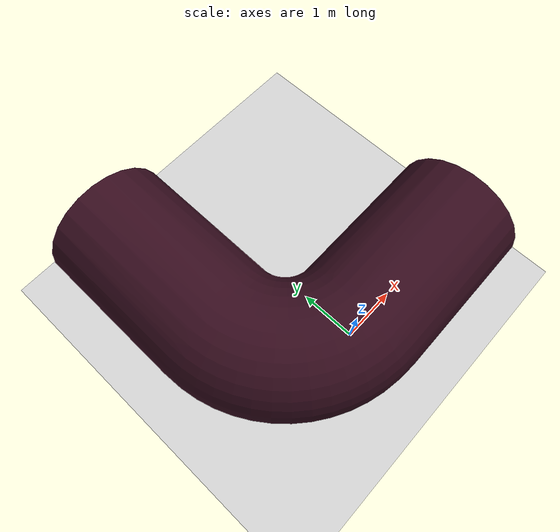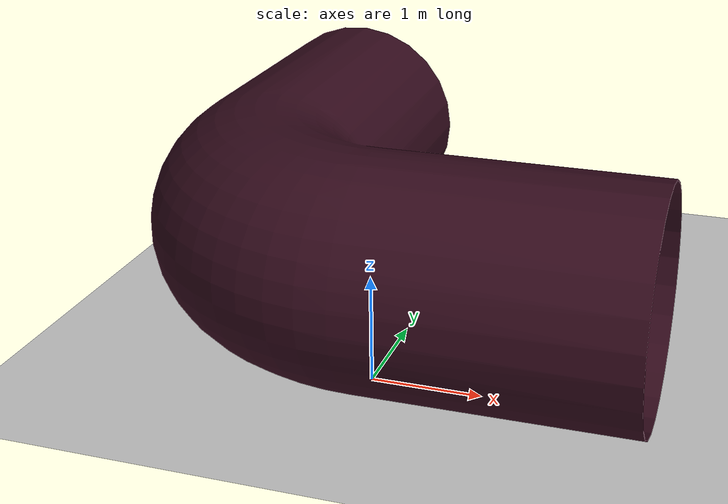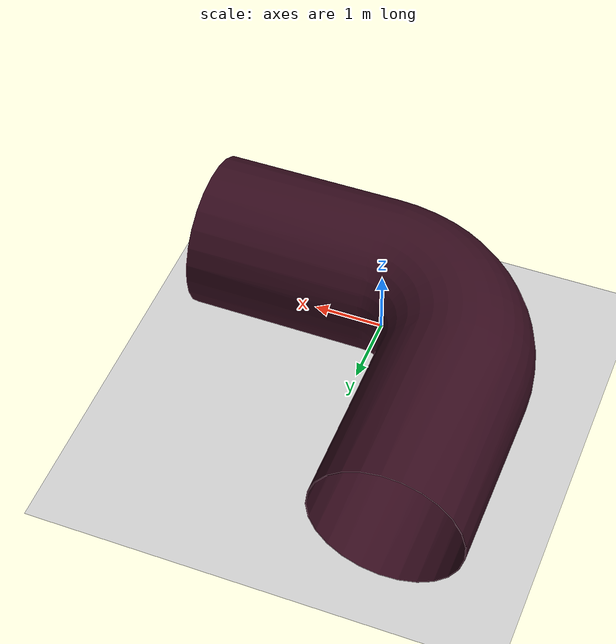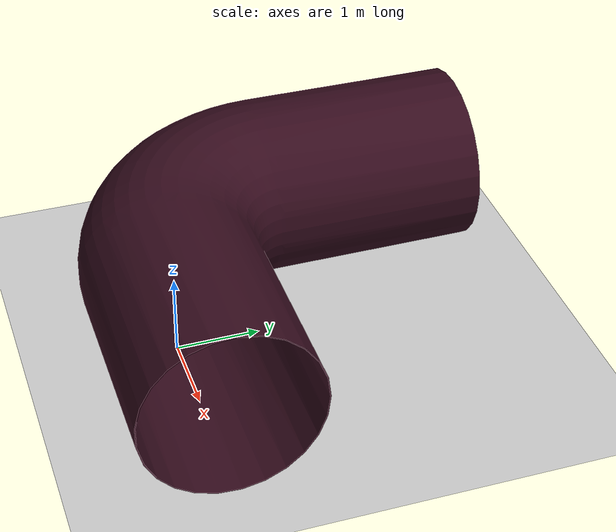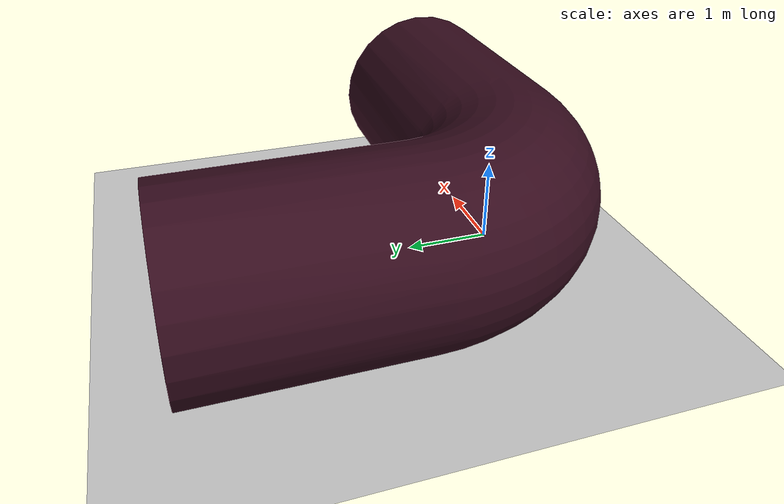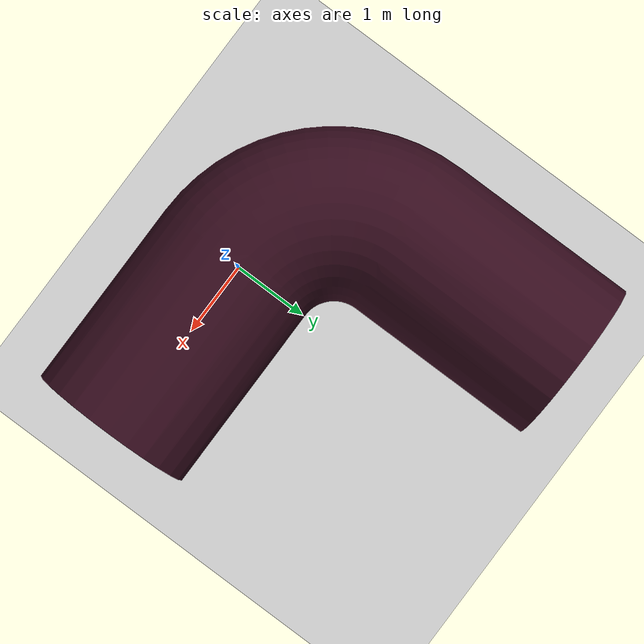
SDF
<sdf version="1.6">
 <world name="default">
  <light name="sun" type="directional">
   <pose>0 0 10 0 -0 0</pose>
   <diffuse>0.8 0.8 0.8 1</diffuse>
   <specular>0.2 0.2 0.2 1</specular>
   <attenuation>
    <range>1000</range>
    <constant>0.9</constant>
    <linear>0.01</linear>
    <quadratic>0.001</quadratic>
   </attenuation>
   <direction>-0.5 0.1 -0.9</direction>
  </light>
  <model name="ground_plane">
   <static>1</static>
   <link name="link">
    <collision name="collision">
     <geometry><plane><normal>0 0 1</normal><size>100 100</size></plane></geometry>
     <surface>
      <contact><collide_bitmask>65535</collide_bitmask></contact>
      <friction><ode><mu>100</mu><mu2>50</mu2></ode></friction>
     </surface>
    </collision>
    <visual name="visual">
     <cast_shadows>0</cast_shadows>
     <geometry><plane><normal>0 0 1</normal><size>100 100</size></plane></geometry>
     <material>
      <script><uri>file://media/materials/scripts/gazebo.material</uri><name>Gazebo/Grey</name></script>
     </material>
    </visual>
   </link>
  </model>
  <gravity>0 0 -9.8</gravity>
  <magnetic_field>6e-06 2.3e-05 -4.2e-05</magnetic_field>
  <atmosphere type="adiabatic"/>
  <physics name="default_physics" default="0" type="ode">
   <max_step_size>0.001</max_step_size>
   <real_time_factor>1</real_time_factor>
   <real_time_update_rate>1000</real_time_update_rate>
  </physics>
  <scene><ambient>0.4 0.4 0.4 1</ambient><background>0.7 0.7 0.7 1</background><shadows>1</shadows></scene>
  <spherical_coordinates>
   <surface_model>EARTH_WGS84</surface_model>
   <latitude_deg>0</latitude_deg>
   <longitude_deg>0</longitude_deg>
   <elevation>0</elevation>
   <heading_deg>0</heading_deg>
  </spherical_coordinates>
  <model name="tubewhole0515">
   <link name="tubewhole0515">
    <inertial>
     <pose>-0.466841 1.03316 0 0 -0 0</pose>
     <mass>6451.9</mass>
     <inertia>
      <ixx>16987.5</ixx>
      <ixy>7045.13</ixy>
      <ixz>0</ixz>
      <iyy>16987.5</iyy>
      <iyz>0</iyz>
      <izz>26759.5</izz>
     </inertia>
    </inertial>
    <visual name="tubewhole0515_visual">
     <geometry>
      <mesh><scale>1 1 1</scale><uri>/home/hyh/catkin_ws/src/tubewhole0515/meshes/tubewhole0515.STL</uri></mesh>
     </geometry>
     <material>
      <shader type="pixel"><normal_map>__default__</normal_map></shader>
      <script>
       <name>ModelPreview_1::tubewhole0515::tubewhole0515_visual_MATERIAL_</name>
       <uri>__default__</uri>
      </script>
      <ambient>0.239 0.207 0.227 1</ambient>
      <diffuse>0.207 0.047 0.116 1</diffuse>
      <specular>0.251 0.231 0.239 0.1</specular>
      <emissive>0.11 0.01 0.05 0.1</emissive>
     </material>
    </visual>
    <collision name="tubewhole0515_collision">
     <geometry>
      <mesh><uri>/home/hyh/catkin_ws/src/tubewhole0515/meshes/tubewhole0515.STL</uri><scale>1 1 1</scale></mesh>
     </geometry>
     <surface>
      <friction>
       <ode><mu>1</mu><mu2>1</mu2><fdir1>1 0 0</fdir1><slip1>0</slip1><slip2>0</slip2></ode>
       <torsional>
        <coefficient>1</coefficient>
        <patch_radius>0</patch_radius>
        <surface_radius>0</surface_radius>
        <use_patch_radius>1</use_patch_radius>
        <ode><slip>0</slip></ode>
       </torsional>
      </friction>
      <bounce><restitution_coefficient>0</restitution_coefficient><threshold>1e+06</threshold></bounce>
      <contact>
       <collide_without_contact>0</collide_without_contact>
       <collide_without_contact_bitmask>1</collide_without_contact_bitmask>
       <collide_bitmask>1</collide_bitmask>
       <ode>
        <soft_cfm>0</soft_cfm>
        <soft_erp>0.2</soft_erp>
        <kp>1e+13</kp>
        <kd>100</kd>
        <max_vel>0</max_vel>
        <min_depth>0</min_depth>
       </ode>
       <bullet>
        <split_impulse>1</split_impulse>
        <split_impulse_penetration_threshold>-0.01</split_impulse_penetration_threshold>
        <soft_cfm>0</soft_cfm>
        <soft_erp>0.2</soft_erp>
        <kp>1e+13</kp>
        <kd>100</kd>
       </bullet>
      </contact>
     </surface>
    </collision>
   </link>
   <static>0</static>
   <pose>0 0 1.0635 0 -0 0</pose>
  </model>
 </world>
</sdf>
